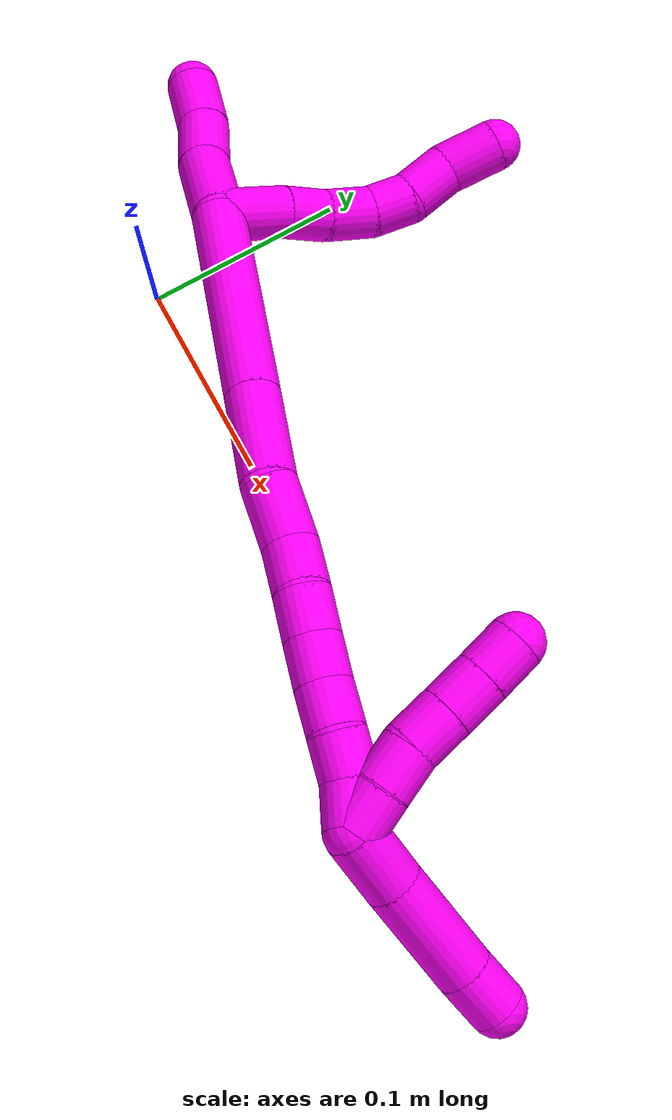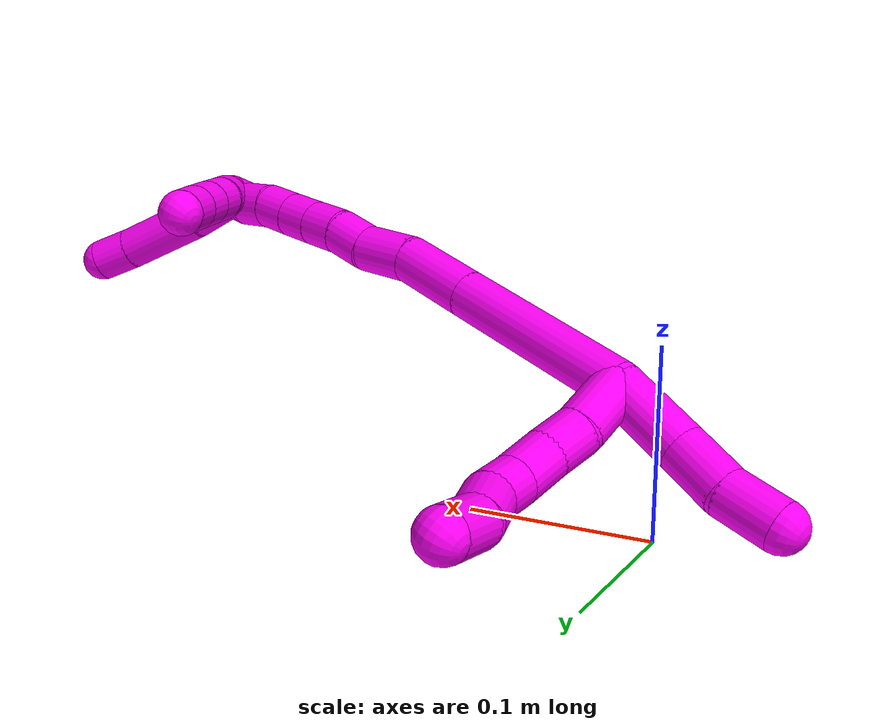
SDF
<sdf version="1.7">
 <world name="default">
  <model name="10">
   <static>0</static>
   <link name="10">
    <collision name="collision-cylinder-e_1_2_8">
     <pose>-0.009447 0.014135 -0.002162 -1.72256 -0.583855 0.673293</pose>
     <geometry><cylinder><radius>0.0125</radius><length>0.034276</length></cylinder></geometry>
     <surface>
      <friction><ode><mu>1.16</mu><mu2>1.16</mu2><slip1>0</slip1><slip2>0</slip2></ode></friction>
      <contact><ode><kp>1e+06</kp><kd>1</kd><max_vel>0</max_vel><min_depth>0.001</min_depth></ode></contact>
     </surface>
    </collision>
    <visual name="visual-cylinder-e_1_2_8">
     <pose>-0.009447 0.014135 -0.002162 -1.72256 -0.583855 0.673293</pose>
     <geometry><cylinder><radius>0.0125</radius><length>0.034276</length></cylinder></geometry>
     <material><ambient>1 0 0.964706 1</ambient></material>
    </visual>
    <collision name="collision-cylinder-e_2_8_9">
     <pose>-0.024806 0.036864 -0.003593 -1.48598 -0.600809 0.554462</pose>
     <geometry><cylinder><radius>0.0125</radius><length>0.020913</length></cylinder></geometry>
     <surface>
      <friction><ode><mu>1.16</mu><mu2>1.16</mu2><slip1>0</slip1><slip2>0</slip2></ode></friction>
      <contact><ode><kp>1e+06</kp><kd>1</kd><max_vel>0</max_vel><min_depth>0.001</min_depth></ode></contact>
     </surface>
    </collision>
    <visual name="visual-cylinder-e_2_8_9">
     <pose>-0.024806 0.036864 -0.003593 -1.48598 -0.600809 0.554462</pose>
     <geometry><cylinder><radius>0.0125</radius><length>0.020913</length></cylinder></geometry>
     <material><ambient>1 0 0.964706 1</ambient></material>
    </visual>
    <collision name="collision-cylinder-e_3_9_10">
     <pose>-0.038265 0.054238 -0.003318 -1.62266 -0.709473 0.743939</pose>
     <geometry><cylinder><radius>0.0125</radius><length>0.023175</length></cylinder></geometry>
     <surface>
      <friction><ode><mu>1.16</mu><mu2>1.16</mu2><slip1>0</slip1><slip2>0</slip2></ode></friction>
      <contact><ode><kp>1e+06</kp><kd>1</kd><max_vel>0</max_vel><min_depth>0.001</min_depth></ode></contact>
     </surface>
    </collision>
    <visual name="visual-cylinder-e_3_9_10">
     <pose>-0.038265 0.054238 -0.003318 -1.62266 -0.709473 0.743939</pose>
     <geometry><cylinder><radius>0.0125</radius><length>0.023175</length></cylinder></geometry>
     <material><ambient>1 0 0.964706 1</ambient></material>
    </visual>
    <collision name="collision-cylinder-e_4_10_11">
     <pose>-0.054262 0.068677 -0.005103 -1.80149 -0.968031 1.17163</pose>
     <geometry><cylinder><radius>0.0125</radius><length>0.020511</length></cylinder></geometry>
     <surface>
      <friction><ode><mu>1.16</mu><mu2>1.16</mu2><slip1>0</slip1><slip2>0</slip2></ode></friction>
      <contact><ode><kp>1e+06</kp><kd>1</kd><max_vel>0</max_vel><min_depth>0.001</min_depth></ode></contact>
     </surface>
    </collision>
    <visual name="visual-cylinder-e_4_10_11">
     <pose>-0.054262 0.068677 -0.005103 -1.80149 -0.968031 1.17163</pose>
     <geometry><cylinder><radius>0.0125</radius><length>0.020511</length></cylinder></geometry>
     <material><ambient>1 0 0.964706 1</ambient></material>
    </visual>
    <collision name="collision-cylinder-e_5_11_12">
     <pose>-0.072497 0.07934 -0.011563 -2.3689 -0.938802 1.78966</pose>
     <geometry><cylinder><radius>0.0125</radius><length>0.024259</length></cylinder></geometry>
     <surface>
      <friction><ode><mu>1.16</mu><mu2>1.16</mu2><slip1>0</slip1><slip2>0</slip2></ode></friction>
      <contact><ode><kp>1e+06</kp><kd>1</kd><max_vel>0</max_vel><min_depth>0.001</min_depth></ode></contact>
     </surface>
    </collision>
    <visual name="visual-cylinder-e_5_11_12">
     <pose>-0.072497 0.07934 -0.011563 -2.3689 -0.938802 1.78966</pose>
     <geometry><cylinder><radius>0.0125</radius><length>0.024259</length></cylinder></geometry>
     <material><ambient>1 0 0.964706 1</ambient></material>
    </visual>
    <collision name="collision-cylinder-e_6_12_6">
     <pose>-0.094608 0.089462 -0.018224 -1.86113 -1.16164 1.44455</pose>
     <geometry><cylinder><radius>0.0125</radius><length>0.026866</length></cylinder></geometry>
     <surface>
      <friction><ode><mu>1.16</mu><mu2>1.16</mu2><slip1>0</slip1><slip2>0</slip2></ode></friction>
      <contact><ode><kp>1e+06</kp><kd>1</kd><max_vel>0</max_vel><min_depth>0.001</min_depth></ode></contact>
     </surface>
    </collision>
    <visual name="visual-cylinder-e_6_12_6">
     <pose>-0.094608 0.089462 -0.018224 -1.86113 -1.16164 1.44455</pose>
     <geometry><cylinder><radius>0.0125</radius><length>0.026866</length></cylinder></geometry>
     <material><ambient>1 0 0.964706 1</ambient></material>
    </visual>
    <collision name="collision-cylinder-e_1_2_13">
     <pose>0.001779 0.004597 -0.02047 -2.92067 0.084575 -0.728901</pose>
     <geometry><cylinder><radius>0.0125</radius><length>0.04211</length></cylinder></geometry>
     <surface>
      <friction><ode><mu>1.16</mu><mu2>1.16</mu2><slip1>0</slip1><slip2>0</slip2></ode></friction>
      <contact><ode><kp>1e+06</kp><kd>1</kd><max_vel>0</max_vel><min_depth>0.001</min_depth></ode></contact>
     </surface>
    </collision>
    <visual name="visual-cylinder-e_1_2_13">
     <pose>0.001779 0.004597 -0.02047 -2.92067 0.084575 -0.728901</pose>
     <geometry><cylinder><radius>0.0125</radius><length>0.04211</length></cylinder></geometry>
     <material><ambient>1 0 0.964706 1</ambient></material>
    </visual>
    <collision name="collision-cylinder-e_2_13_14">
     <pose>0.002095 0.012519 -0.055216 -2.9128 -0.099442 0.817416</pose>
     <geometry><cylinder><radius>0.0125</radius><length>0.029462</length></cylinder></geometry>
     <surface>
      <friction><ode><mu>1.16</mu><mu2>1.16</mu2><slip1>0</slip1><slip2>0</slip2></ode></friction>
      <contact><ode><kp>1e+06</kp><kd>1</kd><max_vel>0</max_vel><min_depth>0.001</min_depth></ode></contact>
     </surface>
    </collision>
    <visual name="visual-cylinder-e_2_13_14">
     <pose>0.002095 0.012519 -0.055216 -2.9128 -0.099442 0.817416</pose>
     <geometry><cylinder><radius>0.0125</radius><length>0.029462</length></cylinder></geometry>
     <material><ambient>1 0 0.964706 1</ambient></material>
    </visual>
    <collision name="collision-cylinder-e_3_14_5">
     <pose>-6e-05 0.016115 -0.083687 -3.12248 -0.048712 2.39382</pose>
     <geometry><cylinder><radius>0.0125</radius><length>0.028428</length></cylinder></geometry>
     <surface>
      <friction><ode><mu>1.16</mu><mu2>1.16</mu2><slip1>0</slip1><slip2>0</slip2></ode></friction>
      <contact><ode><kp>1e+06</kp><kd>1</kd><max_vel>0</max_vel><min_depth>0.001</min_depth></ode></contact>
     </surface>
    </collision>
    <visual name="visual-cylinder-e_3_14_5">
     <pose>-6e-05 0.016115 -0.083687 -3.12248 -0.048712 2.39382</pose>
     <geometry><cylinder><radius>0.0125</radius><length>0.028428</length></cylinder></geometry>
     <material><ambient>1 0 0.964706 1</ambient></material>
    </visual>
    <collision name="collision-cylinder-e_1_2_15">
     <pose>0.005437 -0.001106 0.05053 0.021877 0.107169 0.001173</pose>
     <geometry><cylinder><radius>0.0125</radius><length>0.101668</length></cylinder></geometry>
     <surface>
      <friction><ode><mu>1.16</mu><mu2>1.16</mu2><slip1>0</slip1><slip2>0</slip2></ode></friction>
      <contact><ode><kp>1e+06</kp><kd>1</kd><max_vel>0</max_vel><min_depth>0.001</min_depth></ode></contact>
     </surface>
    </collision>
    <visual name="visual-cylinder-e_1_2_15">
     <pose>0.005437 -0.001106 0.05053 0.021877 0.107169 0.001173</pose>
     <geometry><cylinder><radius>0.0125</radius><length>0.101668</length></cylinder></geometry>
     <material><ambient>1 0 0.964706 1</ambient></material>
    </visual>
    <collision name="collision-cylinder-e_2_15_16">
     <pose>0.013319 -0.002779 0.123356 0.025477 0.109159 0.001392</pose>
     <geometry><cylinder><radius>0.0125</radius><length>0.044873</length></cylinder></geometry>
     <surface>
      <friction><ode><mu>1.16</mu><mu2>1.16</mu2><slip1>0</slip1><slip2>0</slip2></ode></friction>
      <contact><ode><kp>1e+06</kp><kd>1</kd><max_vel>0</max_vel><min_depth>0.001</min_depth></ode></contact>
     </surface>
    </collision>
    <visual name="visual-cylinder-e_2_15_16">
     <pose>0.013319 -0.002779 0.123356 0.025477 0.109159 0.001392</pose>
     <geometry><cylinder><radius>0.0125</radius><length>0.044873</length></cylinder></geometry>
     <material><ambient>1 0 0.964706 1</ambient></material>
    </visual>
    <collision name="collision-cylinder-e_3_16_17">
     <pose>0.017089 -0.000173 0.160254 -0.214075 0.088464 -0.009511</pose>
     <geometry><cylinder><radius>0.0125</radius><length>0.030002</length></cylinder></geometry>
     <surface>
      <friction><ode><mu>1.16</mu><mu2>1.16</mu2><slip1>0</slip1><slip2>0</slip2></ode></friction>
      <contact><ode><kp>1e+06</kp><kd>1</kd><max_vel>0</max_vel><min_depth>0.001</min_depth></ode></contact>
     </surface>
    </collision>
    <visual name="visual-cylinder-e_3_16_17">
     <pose>0.017089 -0.000173 0.160254 -0.214075 0.088464 -0.009511</pose>
     <geometry><cylinder><radius>0.0125</radius><length>0.030002</length></cylinder></geometry>
     <material><ambient>1 0 0.964706 1</ambient></material>
    </visual>
    <collision name="collision-cylinder-e_4_17_18">
     <pose>0.019065 0.00286 0.185997 0.012642 0.058336 0.000369</pose>
     <geometry><cylinder><radius>0.0125</radius><length>0.022324</length></cylinder></geometry>
     <surface>
      <friction><ode><mu>1.16</mu><mu2>1.16</mu2><slip1>0</slip1><slip2>0</slip2></ode></friction>
      <contact><ode><kp>1e+06</kp><kd>1</kd><max_vel>0</max_vel><min_depth>0.001</min_depth></ode></contact>
     </surface>
    </collision>
    <visual name="visual-cylinder-e_4_17_18">
     <pose>0.019065 0.00286 0.185997 0.012642 0.058336 0.000369</pose>
     <geometry><cylinder><radius>0.0125</radius><length>0.022324</length></cylinder></geometry>
     <material><ambient>1 0 0.964706 1</ambient></material>
    </visual>
    <collision name="collision-cylinder-e_5_18_19">
     <pose>0.021383 0.004059 0.20741 -0.129677 0.159606 -0.010385</pose>
     <geometry><cylinder><radius>0.0125</radius><length>0.020983</length></cylinder></geometry>
     <surface>
      <friction><ode><mu>1.16</mu><mu2>1.16</mu2><slip1>0</slip1><slip2>0</slip2></ode></friction>
      <contact><ode><kp>1e+06</kp><kd>1</kd><max_vel>0</max_vel><min_depth>0.001</min_depth></ode></contact>
     </surface>
    </collision>
    <visual name="visual-cylinder-e_5_18_19">
     <pose>0.021383 0.004059 0.20741 -0.129677 0.159606 -0.010385</pose>
     <geometry><cylinder><radius>0.0125</radius><length>0.020983</length></cylinder></geometry>
     <material><ambient>1 0 0.964706 1</ambient></material>
    </visual>
    <collision name="collision-cylinder-e_6_19_20">
     <pose>0.024463 0.006621 0.227573 -0.123 0.140791 -0.008684</pose>
     <geometry><cylinder><radius>0.0125</radius><length>0.020133</length></cylinder></geometry>
     <surface>
      <friction><ode><mu>1.16</mu><mu2>1.16</mu2><slip1>0</slip1><slip2>0</slip2></ode></friction>
      <contact><ode><kp>1e+06</kp><kd>1</kd><max_vel>0</max_vel><min_depth>0.001</min_depth></ode></contact>
     </surface>
    </collision>
    <visual name="visual-cylinder-e_6_19_20">
     <pose>0.024463 0.006621 0.227573 -0.123 0.140791 -0.008684</pose>
     <geometry><cylinder><radius>0.0125</radius><length>0.020133</length></cylinder></geometry>
     <material><ambient>1 0 0.964706 1</ambient></material>
    </visual>
    <collision name="collision-cylinder-e_7_20_21">
     <pose>0.026914 0.009045 0.247341 -0.121021 0.10404 -0.006309</pose>
     <geometry><cylinder><radius>0.0125</radius><length>0.020007</length></cylinder></geometry>
     <surface>
      <friction><ode><mu>1.16</mu><mu2>1.16</mu2><slip1>0</slip1><slip2>0</slip2></ode></friction>
      <contact><ode><kp>1e+06</kp><kd>1</kd><max_vel>0</max_vel><min_depth>0.001</min_depth></ode></contact>
     </surface>
    </collision>
    <visual name="visual-cylinder-e_7_20_21">
     <pose>0.026914 0.009045 0.247341 -0.121021 0.10404 -0.006309</pose>
     <geometry><cylinder><radius>0.0125</radius><length>0.020007</length></cylinder></geometry>
     <material><ambient>1 0 0.964706 1</ambient></material>
    </visual>
    <collision name="collision-cylinder-e_8_21_22">
     <pose>0.029861 0.012979 0.266651 -0.282005 0.191821 -0.02731</pose>
     <geometry><cylinder><radius>0.0125</radius><length>0.02001</length></cylinder></geometry>
     <surface>
      <friction><ode><mu>1.16</mu><mu2>1.16</mu2><slip1>0</slip1><slip2>0</slip2></ode></friction>
      <contact><ode><kp>1e+06</kp><kd>1</kd><max_vel>0</max_vel><min_depth>0.001</min_depth></ode></contact>
     </surface>
    </collision>
    <visual name="visual-cylinder-e_8_21_22">
     <pose>0.029861 0.012979 0.266651 -0.282005 0.191821 -0.02731</pose>
     <geometry><cylinder><radius>0.0125</radius><length>0.02001</length></cylinder></geometry>
     <material><ambient>1 0 0.964706 1</ambient></material>
    </visual>
    <collision name="collision-cylinder-e_9_22_1">
     <pose>0.03468 0.016104 0.285643 -0.040973 0.295513 -0.006099</pose>
     <geometry><cylinder><radius>0.0125</radius><length>0.02</length></cylinder></geometry>
     <surface>
      <friction><ode><mu>1.16</mu><mu2>1.16</mu2><slip1>0</slip1><slip2>0</slip2></ode></friction>
      <contact><ode><kp>1e+06</kp><kd>1</kd><max_vel>0</max_vel><min_depth>0.001</min_depth></ode></contact>
     </surface>
    </collision>
    <visual name="visual-cylinder-e_9_22_1">
     <pose>0.03468 0.016104 0.285643 -0.040973 0.295513 -0.006099</pose>
     <geometry><cylinder><radius>0.0125</radius><length>0.02</length></cylinder></geometry>
     <material><ambient>1 0 0.964706 1</ambient></material>
    </visual>
    <collision name="collision-cylinder-e_1_1_23">
     <pose>0.038812 0.02818 0.303796 -0.936557 0.083833 -0.042421</pose>
     <geometry><cylinder><radius>0.0125</radius><length>0.02911</length></cylinder></geometry>
     <surface>
      <friction><ode><mu>1.16</mu><mu2>1.16</mu2><slip1>0</slip1><slip2>0</slip2></ode></friction>
      <contact><ode><kp>1e+06</kp><kd>1</kd><max_vel>0</max_vel><min_depth>0.001</min_depth></ode></contact>
     </surface>
    </collision>
    <visual name="visual-cylinder-e_1_1_23">
     <pose>0.038812 0.02818 0.303796 -0.936557 0.083833 -0.042421</pose>
     <geometry><cylinder><radius>0.0125</radius><length>0.02911</length></cylinder></geometry>
     <material><ambient>1 0 0.964706 1</ambient></material>
    </visual>
    <collision name="collision-cylinder-e_2_23_24">
     <pose>0.040569 0.058537 0.328157 -0.869606 0.022059 -0.010246</pose>
     <geometry><cylinder><radius>0.0125</radius><length>0.048891</length></cylinder></geometry>
     <surface>
      <friction><ode><mu>1.16</mu><mu2>1.16</mu2><slip1>0</slip1><slip2>0</slip2></ode></friction>
      <contact><ode><kp>1e+06</kp><kd>1</kd><max_vel>0</max_vel><min_depth>0.001</min_depth></ode></contact>
     </surface>
    </collision>
    <visual name="visual-cylinder-e_2_23_24">
     <pose>0.040569 0.058537 0.328157 -0.869606 0.022059 -0.010246</pose>
     <geometry><cylinder><radius>0.0125</radius><length>0.048891</length></cylinder></geometry>
     <material><ambient>1 0 0.964706 1</ambient></material>
    </visual>
    <collision name="collision-cylinder-e_3_24_4">
     <pose>0.040719 0.08546 0.351189 -0.848759 -0.03547 0.016028</pose>
     <geometry><cylinder><radius>0.0125</radius><length>0.021999</length></cylinder></geometry>
     <surface>
      <friction><ode><mu>1.16</mu><mu2>1.16</mu2><slip1>0</slip1><slip2>0</slip2></ode></friction>
      <contact><ode><kp>1e+06</kp><kd>1</kd><max_vel>0</max_vel><min_depth>0.001</min_depth></ode></contact>
     </surface>
    </collision>
    <visual name="visual-cylinder-e_3_24_4">
     <pose>0.040719 0.08546 0.351189 -0.848759 -0.03547 0.016028</pose>
     <geometry><cylinder><radius>0.0125</radius><length>0.021999</length></cylinder></geometry>
     <material><ambient>1 0 0.964706 1</ambient></material>
    </visual>
    <collision name="collision-cylinder-e_1_1_25">
     <pose>0.029413 0.017839 0.289608 -2.90609 -0.957888 2.6936</pose>
     <geometry><cylinder><radius>0.0125</radius><length>0.02</length></cylinder></geometry>
     <surface>
      <friction><ode><mu>1.16</mu><mu2>1.16</mu2><slip1>0</slip1><slip2>0</slip2></ode></friction>
      <contact><ode><kp>1e+06</kp><kd>1</kd><max_vel>0</max_vel><min_depth>0.001</min_depth></ode></contact>
     </surface>
    </collision>
    <visual name="visual-cylinder-e_1_1_25">
     <pose>0.029413 0.017839 0.289608 -2.90609 -0.957888 2.6936</pose>
     <geometry><cylinder><radius>0.0125</radius><length>0.02</length></cylinder></geometry>
     <material><ambient>1 0 0.964706 1</ambient></material>
    </visual>
    <collision name="collision-cylinder-e_2_25_26">
     <pose>0.013307 0.021199 0.278261 -2.80428 -0.915156 2.47578</pose>
     <geometry><cylinder><radius>0.0125</radius><length>0.02</length></cylinder></geometry>
     <surface>
      <friction><ode><mu>1.16</mu><mu2>1.16</mu2><slip1>0</slip1><slip2>0</slip2></ode></friction>
      <contact><ode><kp>1e+06</kp><kd>1</kd><max_vel>0</max_vel><min_depth>0.001</min_depth></ode></contact>
     </surface>
    </collision>
    <visual name="visual-cylinder-e_2_25_26">
     <pose>0.013307 0.021199 0.278261 -2.80428 -0.915156 2.47578</pose>
     <geometry><cylinder><radius>0.0125</radius><length>0.02</length></cylinder></geometry>
     <material><ambient>1 0 0.964706 1</ambient></material>
    </visual>
    <collision name="collision-cylinder-e_3_26_27">
     <pose>-0.002975 0.026598 0.268177 -2.47864 -0.989054 2.0054</pose>
     <geometry><cylinder><radius>0.0125</radius><length>0.02</length></cylinder></geometry>
     <surface>
      <friction><ode><mu>1.16</mu><mu2>1.16</mu2><slip1>0</slip1><slip2>0</slip2></ode></friction>
      <contact><ode><kp>1e+06</kp><kd>1</kd><max_vel>0</max_vel><min_depth>0.001</min_depth></ode></contact>
     </surface>
    </collision>
    <visual name="visual-cylinder-e_3_26_27">
     <pose>-0.002975 0.026598 0.268177 -2.47864 -0.989054 2.0054</pose>
     <geometry><cylinder><radius>0.0125</radius><length>0.02</length></cylinder></geometry>
     <material><ambient>1 0 0.964706 1</ambient></material>
    </visual>
    <collision name="collision-cylinder-e_4_27_28">
     <pose>-0.019611 0.033392 0.259399 -2.4871 -0.975707 2.00338</pose>
     <geometry><cylinder><radius>0.0125</radius><length>0.02</length></cylinder></geometry>
     <surface>
      <friction><ode><mu>1.16</mu><mu2>1.16</mu2><slip1>0</slip1><slip2>0</slip2></ode></friction>
      <contact><ode><kp>1e+06</kp><kd>1</kd><max_vel>0</max_vel><min_depth>0.001</min_depth></ode></contact>
     </surface>
    </collision>
    <visual name="visual-cylinder-e_4_27_28">
     <pose>-0.019611 0.033392 0.259399 -2.4871 -0.975707 2.00338</pose>
     <geometry><cylinder><radius>0.0125</radius><length>0.02</length></cylinder></geometry>
     <material><ambient>1 0 0.964706 1</ambient></material>
    </visual>
    <collision name="collision-cylinder-e_5_28_3">
     <pose>-0.036112 0.040087 0.250297 -2.52745 -0.964832 2.05266</pose>
     <geometry><cylinder><radius>0.0125</radius><length>0.02</length></cylinder></geometry>
     <surface>
      <friction><ode><mu>1.16</mu><mu2>1.16</mu2><slip1>0</slip1><slip2>0</slip2></ode></friction>
      <contact><ode><kp>1e+06</kp><kd>1</kd><max_vel>0</max_vel><min_depth>0.001</min_depth></ode></contact>
     </surface>
    </collision>
    <visual name="visual-cylinder-e_5_28_3">
     <pose>-0.036112 0.040087 0.250297 -2.52745 -0.964832 2.05266</pose>
     <geometry><cylinder><radius>0.0125</radius><length>0.02</length></cylinder></geometry>
     <material><ambient>1 0 0.964706 1</ambient></material>
    </visual>
    <collision name="collision-sphere-3">
     <pose>-0.044331 0.043369 0.245642 0 -0 0</pose>
     <geometry><sphere><radius>0.0125</radius></sphere></geometry>
     <surface>
      <friction><ode><mu>1.16</mu><mu2>1.16</mu2><slip1>0</slip1><slip2>0</slip2></ode></friction>
      <contact><ode><kp>1e+06</kp><kd>1</kd><max_vel>0</max_vel><min_depth>0.001</min_depth></ode></contact>
     </surface>
    </collision>
    <visual name="visual-sphere-3">
     <pose>-0.044331 0.043369 0.245642 0 -0 0</pose>
     <geometry><sphere><radius>0.0125</radius></sphere></geometry>
     <material><ambient>1 0 0.964706 1</ambient></material>
    </visual>
    <collision name="collision-sphere-28">
     <pose>-0.027892 0.036805 0.254951 0 -0 0</pose>
     <geometry><sphere><radius>0.0125</radius></sphere></geometry>
     <surface>
      <friction><ode><mu>1.16</mu><mu2>1.16</mu2><slip1>0</slip1><slip2>0</slip2></ode></friction>
      <contact><ode><kp>1e+06</kp><kd>1</kd><max_vel>0</max_vel><min_depth>0.001</min_depth></ode></contact>
     </surface>
    </collision>
    <visual name="visual-sphere-28">
     <pose>-0.027892 0.036805 0.254951 0 -0 0</pose>
     <geometry><sphere><radius>0.0125</radius></sphere></geometry>
     <material><ambient>1 0 0.964706 1</ambient></material>
    </visual>
    <collision name="collision-sphere-27">
     <pose>-0.01133 0.02998 0.263846 0 -0 0</pose>
     <geometry><sphere><radius>0.0125</radius></sphere></geometry>
     <surface>
      <friction><ode><mu>1.16</mu><mu2>1.16</mu2><slip1>0</slip1><slip2>0</slip2></ode></friction>
      <contact><ode><kp>1e+06</kp><kd>1</kd><max_vel>0</max_vel><min_depth>0.001</min_depth></ode></contact>
     </surface>
    </collision>
    <visual name="visual-sphere-27">
     <pose>-0.01133 0.02998 0.263846 0 -0 0</pose>
     <geometry><sphere><radius>0.0125</radius></sphere></geometry>
     <material><ambient>1 0 0.964706 1</ambient></material>
    </visual>
    <collision name="collision-sphere-26">
     <pose>0.00538 0.023216 0.272508 0 -0 0</pose>
     <geometry><sphere><radius>0.0125</radius></sphere></geometry>
     <surface>
      <friction><ode><mu>1.16</mu><mu2>1.16</mu2><slip1>0</slip1><slip2>0</slip2></ode></friction>
      <contact><ode><kp>1e+06</kp><kd>1</kd><max_vel>0</max_vel><min_depth>0.001</min_depth></ode></contact>
     </surface>
    </collision>
    <visual name="visual-sphere-26">
     <pose>0.00538 0.023216 0.272508 0 -0 0</pose>
     <geometry><sphere><radius>0.0125</radius></sphere></geometry>
     <material><ambient>1 0 0.964706 1</ambient></material>
    </visual>
    <collision name="collision-sphere-25">
     <pose>0.021233 0.019181 0.284014 0 -0 0</pose>
     <geometry><sphere><radius>0.0125</radius></sphere></geometry>
     <surface>
      <friction><ode><mu>1.16</mu><mu2>1.16</mu2><slip1>0</slip1><slip2>0</slip2></ode></friction>
      <contact><ode><kp>1e+06</kp><kd>1</kd><max_vel>0</max_vel><min_depth>0.001</min_depth></ode></contact>
     </surface>
    </collision>
    <visual name="visual-sphere-25">
     <pose>0.021233 0.019181 0.284014 0 -0 0</pose>
     <geometry><sphere><radius>0.0125</radius></sphere></geometry>
     <material><ambient>1 0 0.964706 1</ambient></material>
    </visual>
    <collision name="collision-sphere-4">
     <pose>0.040329 0.093709 0.358454 0 -0 0</pose>
     <geometry><sphere><radius>0.0125</radius></sphere></geometry>
     <surface>
      <friction><ode><mu>1.16</mu><mu2>1.16</mu2><slip1>0</slip1><slip2>0</slip2></ode></friction>
      <contact><ode><kp>1e+06</kp><kd>1</kd><max_vel>0</max_vel><min_depth>0.001</min_depth></ode></contact>
     </surface>
    </collision>
    <visual name="visual-sphere-4">
     <pose>0.040329 0.093709 0.358454 0 -0 0</pose>
     <geometry><sphere><radius>0.0125</radius></sphere></geometry>
     <material><ambient>1 0 0.964706 1</ambient></material>
    </visual>
    <collision name="collision-sphere-24">
     <pose>0.041109 0.07721 0.343924 0 -0 0</pose>
     <geometry><sphere><radius>0.0125</radius></sphere></geometry>
     <surface>
      <friction><ode><mu>1.16</mu><mu2>1.16</mu2><slip1>0</slip1><slip2>0</slip2></ode></friction>
      <contact><ode><kp>1e+06</kp><kd>1</kd><max_vel>0</max_vel><min_depth>0.001</min_depth></ode></contact>
     </surface>
    </collision>
    <visual name="visual-sphere-24">
     <pose>0.041109 0.07721 0.343924 0 -0 0</pose>
     <geometry><sphere><radius>0.0125</radius></sphere></geometry>
     <material><ambient>1 0 0.964706 1</ambient></material>
    </visual>
    <collision name="collision-sphere-23">
     <pose>0.04003 0.039863 0.312391 0 -0 0</pose>
     <geometry><sphere><radius>0.0125</radius></sphere></geometry>
     <surface>
      <friction><ode><mu>1.16</mu><mu2>1.16</mu2><slip1>0</slip1><slip2>0</slip2></ode></friction>
      <contact><ode><kp>1e+06</kp><kd>1</kd><max_vel>0</max_vel><min_depth>0.001</min_depth></ode></contact>
     </surface>
    </collision>
    <visual name="visual-sphere-23">
     <pose>0.04003 0.039863 0.312391 0 -0 0</pose>
     <geometry><sphere><radius>0.0125</radius></sphere></geometry>
     <material><ambient>1 0 0.964706 1</ambient></material>
    </visual>
    <collision name="collision-sphere-1">
     <pose>0.037593 0.016496 0.295202 0 -0 0</pose>
     <geometry><sphere><radius>0.0125</radius></sphere></geometry>
     <surface>
      <friction><ode><mu>1.16</mu><mu2>1.16</mu2><slip1>0</slip1><slip2>0</slip2></ode></friction>
      <contact><ode><kp>1e+06</kp><kd>1</kd><max_vel>0</max_vel><min_depth>0.001</min_depth></ode></contact>
     </surface>
    </collision>
    <visual name="visual-sphere-1">
     <pose>0.037593 0.016496 0.295202 0 -0 0</pose>
     <geometry><sphere><radius>0.0125</radius></sphere></geometry>
     <material><ambient>1 0 0.964706 1</ambient></material>
    </visual>
    <collision name="collision-sphere-22">
     <pose>0.031768 0.015713 0.276085 0 -0 0</pose>
     <geometry><sphere><radius>0.0125</radius></sphere></geometry>
     <surface>
      <friction><ode><mu>1.16</mu><mu2>1.16</mu2><slip1>0</slip1><slip2>0</slip2></ode></friction>
      <contact><ode><kp>1e+06</kp><kd>1</kd><max_vel>0</max_vel><min_depth>0.001</min_depth></ode></contact>
     </surface>
    </collision>
    <visual name="visual-sphere-22">
     <pose>0.031768 0.015713 0.276085 0 -0 0</pose>
     <geometry><sphere><radius>0.0125</radius></sphere></geometry>
     <material><ambient>1 0 0.964706 1</ambient></material>
    </visual>
    <collision name="collision-sphere-21">
     <pose>0.027953 0.010246 0.257218 0 -0 0</pose>
     <geometry><sphere><radius>0.0125</radius></sphere></geometry>
     <surface>
      <friction><ode><mu>1.16</mu><mu2>1.16</mu2><slip1>0</slip1><slip2>0</slip2></ode></friction>
      <contact><ode><kp>1e+06</kp><kd>1</kd><max_vel>0</max_vel><min_depth>0.001</min_depth></ode></contact>
     </surface>
    </collision>
    <visual name="visual-sphere-21">
     <pose>0.027953 0.010246 0.257218 0 -0 0</pose>
     <geometry><sphere><radius>0.0125</radius></sphere></geometry>
     <material><ambient>1 0 0.964706 1</ambient></material>
    </visual>
    <collision name="collision-sphere-12">
     <pose>-0.082284 0.084342 -0.016694 0 -0 0</pose>
     <geometry><sphere><radius>0.0125</radius></sphere></geometry>
     <surface>
      <friction><ode><mu>1.16</mu><mu2>1.16</mu2><slip1>0</slip1><slip2>0</slip2></ode></friction>
      <contact><ode><kp>1e+06</kp><kd>1</kd><max_vel>0</max_vel><min_depth>0.001</min_depth></ode></contact>
     </surface>
    </collision>
    <visual name="visual-sphere-12">
     <pose>-0.082284 0.084342 -0.016694 0 -0 0</pose>
     <geometry><sphere><radius>0.0125</radius></sphere></geometry>
     <material><ambient>1 0 0.964706 1</ambient></material>
    </visual>
    <collision name="collision-sphere-11">
     <pose>-0.06271 0.074337 -0.006432 0 -0 0</pose>
     <geometry><sphere><radius>0.0125</radius></sphere></geometry>
     <surface>
      <friction><ode><mu>1.16</mu><mu2>1.16</mu2><slip1>0</slip1><slip2>0</slip2></ode></friction>
      <contact><ode><kp>1e+06</kp><kd>1</kd><max_vel>0</max_vel><min_depth>0.001</min_depth></ode></contact>
     </surface>
    </collision>
    <visual name="visual-sphere-11">
     <pose>-0.06271 0.074337 -0.006432 0 -0 0</pose>
     <geometry><sphere><radius>0.0125</radius></sphere></geometry>
     <material><ambient>1 0 0.964706 1</ambient></material>
    </visual>
    <collision name="collision-sphere-10">
     <pose>-0.045814 0.063017 -0.003774 0 -0 0</pose>
     <geometry><sphere><radius>0.0125</radius></sphere></geometry>
     <surface>
      <friction><ode><mu>1.16</mu><mu2>1.16</mu2><slip1>0</slip1><slip2>0</slip2></ode></friction>
      <contact><ode><kp>1e+06</kp><kd>1</kd><max_vel>0</max_vel><min_depth>0.001</min_depth></ode></contact>
     </surface>
    </collision>
    <visual name="visual-sphere-10">
     <pose>-0.045814 0.063017 -0.003774 0 -0 0</pose>
     <geometry><sphere><radius>0.0125</radius></sphere></geometry>
     <material><ambient>1 0 0.964706 1</ambient></material>
    </visual>
    <collision name="collision-sphere-9">
     <pose>-0.030717 0.045458 -0.002862 0 -0 0</pose>
     <geometry><sphere><radius>0.0125</radius></sphere></geometry>
     <surface>
      <friction><ode><mu>1.16</mu><mu2>1.16</mu2><slip1>0</slip1><slip2>0</slip2></ode></friction>
      <contact><ode><kp>1e+06</kp><kd>1</kd><max_vel>0</max_vel><min_depth>0.001</min_depth></ode></contact>
     </surface>
    </collision>
    <visual name="visual-sphere-9">
     <pose>-0.030717 0.045458 -0.002862 0 -0 0</pose>
     <geometry><sphere><radius>0.0125</radius></sphere></geometry>
     <material><ambient>1 0 0.964706 1</ambient></material>
    </visual>
    <collision name="collision-sphere-2">
     <geometry><sphere><radius>0.0125</radius></sphere></geometry>
     <surface>
      <friction><ode><mu>1.16</mu><mu2>1.16</mu2><slip1>0</slip1><slip2>0</slip2></ode></friction>
      <contact><ode><kp>1e+06</kp><kd>1</kd><max_vel>0</max_vel><min_depth>0.001</min_depth></ode></contact>
     </surface>
    </collision>
    <visual name="visual-sphere-2">
     <geometry><sphere><radius>0.0125</radius></sphere></geometry>
     <material><ambient>1 0 0.964706 1</ambient></material>
    </visual>
    <collision name="collision-sphere-19">
     <pose>0.02305 0.005398 0.217681 0 -0 0</pose>
     <geometry><sphere><radius>0.0125</radius></sphere></geometry>
     <surface>
      <friction><ode><mu>1.16</mu><mu2>1.16</mu2><slip1>0</slip1><slip2>0</slip2></ode></friction>
      <contact><ode><kp>1e+06</kp><kd>1</kd><max_vel>0</max_vel><min_depth>0.001</min_depth></ode></contact>
     </surface>
    </collision>
    <visual name="visual-sphere-19">
     <pose>0.02305 0.005398 0.217681 0 -0 0</pose>
     <geometry><sphere><radius>0.0125</radius></sphere></geometry>
     <material><ambient>1 0 0.964706 1</ambient></material>
    </visual>
    <collision name="collision-sphere-8">
     <pose>-0.018894 0.028269 -0.004324 0 -0 0</pose>
     <geometry><sphere><radius>0.0125</radius></sphere></geometry>
     <surface>
      <friction><ode><mu>1.16</mu><mu2>1.16</mu2><slip1>0</slip1><slip2>0</slip2></ode></friction>
      <contact><ode><kp>1e+06</kp><kd>1</kd><max_vel>0</max_vel><min_depth>0.001</min_depth></ode></contact>
     </surface>
    </collision>
    <visual name="visual-sphere-8">
     <pose>-0.018894 0.028269 -0.004324 0 -0 0</pose>
     <geometry><sphere><radius>0.0125</radius></sphere></geometry>
     <material><ambient>1 0 0.964706 1</ambient></material>
    </visual>
    <collision name="collision-sphere-6">
     <pose>-0.106932 0.094582 -0.019754 0 -0 0</pose>
     <geometry><sphere><radius>0.0125</radius></sphere></geometry>
     <surface>
      <friction><ode><mu>1.16</mu><mu2>1.16</mu2><slip1>0</slip1><slip2>0</slip2></ode></friction>
      <contact><ode><kp>1e+06</kp><kd>1</kd><max_vel>0</max_vel><min_depth>0.001</min_depth></ode></contact>
     </surface>
    </collision>
    <visual name="visual-sphere-6">
     <pose>-0.106932 0.094582 -0.019754 0 -0 0</pose>
     <geometry><sphere><radius>0.0125</radius></sphere></geometry>
     <material><ambient>1 0 0.964706 1</ambient></material>
    </visual>
    <collision name="collision-sphere-13">
     <pose>0.003557 0.009195 -0.04094 0 -0 0</pose>
     <geometry><sphere><radius>0.0125</radius></sphere></geometry>
     <surface>
      <friction><ode><mu>1.16</mu><mu2>1.16</mu2><slip1>0</slip1><slip2>0</slip2></ode></friction>
      <contact><ode><kp>1e+06</kp><kd>1</kd><max_vel>0</max_vel><min_depth>0.001</min_depth></ode></contact>
     </surface>
    </collision>
    <visual name="visual-sphere-13">
     <pose>0.003557 0.009195 -0.04094 0 -0 0</pose>
     <geometry><sphere><radius>0.0125</radius></sphere></geometry>
     <material><ambient>1 0 0.964706 1</ambient></material>
    </visual>
    <collision name="collision-sphere-14">
     <pose>0.000632 0.015844 -0.069492 0 -0 0</pose>
     <geometry><sphere><radius>0.0125</radius></sphere></geometry>
     <surface>
      <friction><ode><mu>1.16</mu><mu2>1.16</mu2><slip1>0</slip1><slip2>0</slip2></ode></friction>
      <contact><ode><kp>1e+06</kp><kd>1</kd><max_vel>0</max_vel><min_depth>0.001</min_depth></ode></contact>
     </surface>
    </collision>
    <visual name="visual-sphere-14">
     <pose>0.000632 0.015844 -0.069492 0 -0 0</pose>
     <geometry><sphere><radius>0.0125</radius></sphere></geometry>
     <material><ambient>1 0 0.964706 1</ambient></material>
    </visual>
    <collision name="collision-sphere-5">
     <pose>-0.000752 0.016386 -0.097881 0 -0 0</pose>
     <geometry><sphere><radius>0.0125</radius></sphere></geometry>
     <surface>
      <friction><ode><mu>1.16</mu><mu2>1.16</mu2><slip1>0</slip1><slip2>0</slip2></ode></friction>
      <contact><ode><kp>1e+06</kp><kd>1</kd><max_vel>0</max_vel><min_depth>0.001</min_depth></ode></contact>
     </surface>
    </collision>
    <visual name="visual-sphere-5">
     <pose>-0.000752 0.016386 -0.097881 0 -0 0</pose>
     <geometry><sphere><radius>0.0125</radius></sphere></geometry>
     <material><ambient>1 0 0.964706 1</ambient></material>
    </visual>
    <collision name="collision-sphere-15">
     <pose>0.010875 -0.002211 0.10106 0 -0 0</pose>
     <geometry><sphere><radius>0.0125</radius></sphere></geometry>
     <surface>
      <friction><ode><mu>1.16</mu><mu2>1.16</mu2><slip1>0</slip1><slip2>0</slip2></ode></friction>
      <contact><ode><kp>1e+06</kp><kd>1</kd><max_vel>0</max_vel><min_depth>0.001</min_depth></ode></contact>
     </surface>
    </collision>
    <visual name="visual-sphere-15">
     <pose>0.010875 -0.002211 0.10106 0 -0 0</pose>
     <geometry><sphere><radius>0.0125</radius></sphere></geometry>
     <material><ambient>1 0 0.964706 1</ambient></material>
    </visual>
    <collision name="collision-sphere-16">
     <pose>0.015763 -0.003348 0.145652 0 -0 0</pose>
     <geometry><sphere><radius>0.0125</radius></sphere></geometry>
     <surface>
      <friction><ode><mu>1.16</mu><mu2>1.16</mu2><slip1>0</slip1><slip2>0</slip2></ode></friction>
      <contact><ode><kp>1e+06</kp><kd>1</kd><max_vel>0</max_vel><min_depth>0.001</min_depth></ode></contact>
     </surface>
    </collision>
    <visual name="visual-sphere-16">
     <pose>0.015763 -0.003348 0.145652 0 -0 0</pose>
     <geometry><sphere><radius>0.0125</radius></sphere></geometry>
     <material><ambient>1 0 0.964706 1</ambient></material>
    </visual>
    <collision name="collision-sphere-17">
     <pose>0.018414 0.003001 0.174855 0 -0 0</pose>
     <geometry><sphere><radius>0.0125</radius></sphere></geometry>
     <surface>
      <friction><ode><mu>1.16</mu><mu2>1.16</mu2><slip1>0</slip1><slip2>0</slip2></ode></friction>
      <contact><ode><kp>1e+06</kp><kd>1</kd><max_vel>0</max_vel><min_depth>0.001</min_depth></ode></contact>
     </surface>
    </collision>
    <visual name="visual-sphere-17">
     <pose>0.018414 0.003001 0.174855 0 -0 0</pose>
     <geometry><sphere><radius>0.0125</radius></sphere></geometry>
     <material><ambient>1 0 0.964706 1</ambient></material>
    </visual>
    <collision name="collision-sphere-18">
     <pose>0.019716 0.00272 0.197139 0 -0 0</pose>
     <geometry><sphere><radius>0.0125</radius></sphere></geometry>
     <surface>
      <friction><ode><mu>1.16</mu><mu2>1.16</mu2><slip1>0</slip1><slip2>0</slip2></ode></friction>
      <contact><ode><kp>1e+06</kp><kd>1</kd><max_vel>0</max_vel><min_depth>0.001</min_depth></ode></contact>
     </surface>
    </collision>
    <visual name="visual-sphere-18">
     <pose>0.019716 0.00272 0.197139 0 -0 0</pose>
     <geometry><sphere><radius>0.0125</radius></sphere></geometry>
     <material><ambient>1 0 0.964706 1</ambient></material>
    </visual>
    <collision name="collision-sphere-20">
     <pose>0.025876 0.007844 0.237464 0 -0 0</pose>
     <geometry><sphere><radius>0.0125</radius></sphere></geometry>
     <surface>
      <friction><ode><mu>1.16</mu><mu2>1.16</mu2><slip1>0</slip1><slip2>0</slip2></ode></friction>
      <contact><ode><kp>1e+06</kp><kd>1</kd><max_vel>0</max_vel><min_depth>0.001</min_depth></ode></contact>
     </surface>
    </collision>
    <visual name="visual-sphere-20">
     <pose>0.025876 0.007844 0.237464 0 -0 0</pose>
     <geometry><sphere><radius>0.0125</radius></sphere></geometry>
     <material><ambient>1 0 0.964706 1</ambient></material>
    </visual>
    <inertial>
     <pose>0.002055 0.024556 0.130831 0 -0 0</pose>
     <mass>0.75</mass>
     <inertia><ixx>0.000136</ixx><ixy>0</ixy><ixz>0</ixz><iyy>0.000159</iyy><iyz>0</iyz><izz>-8e-06</izz></inertia>
    </inertial>
   </link>
   <pose>0.008701 0.036818 0.087244 -1.1818 0.493815 -1.58947</pose>
  </model>
 </world>
</sdf>
